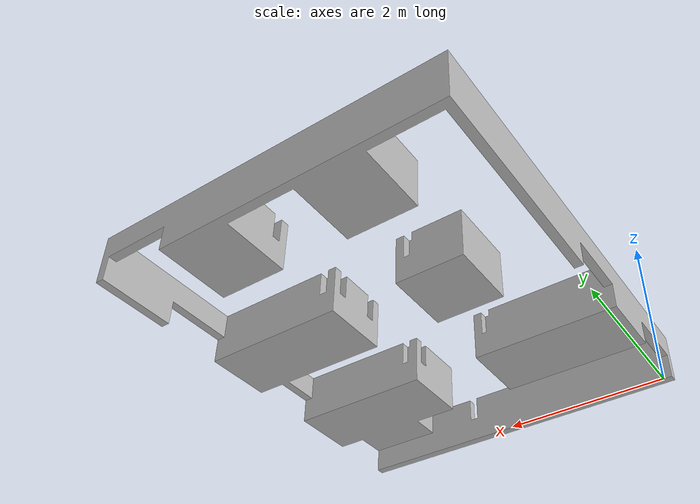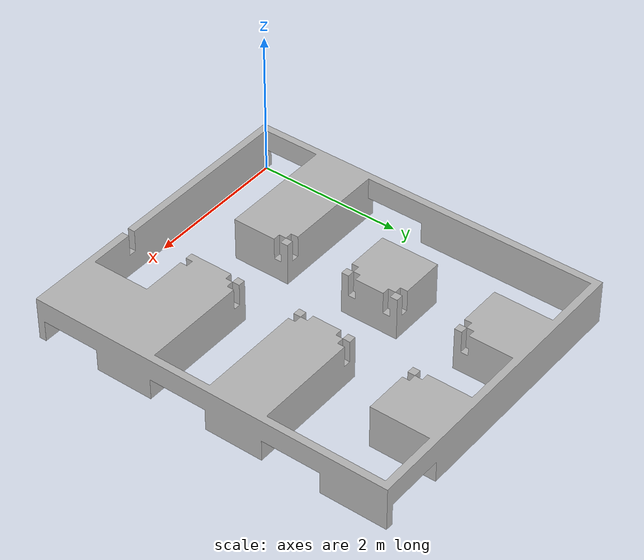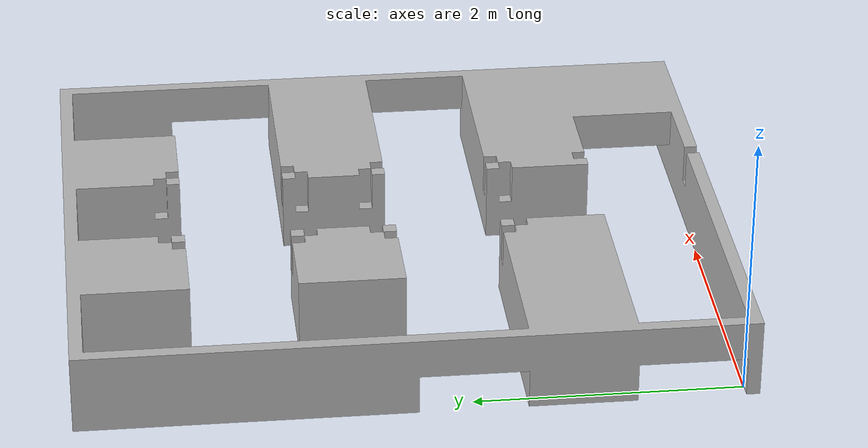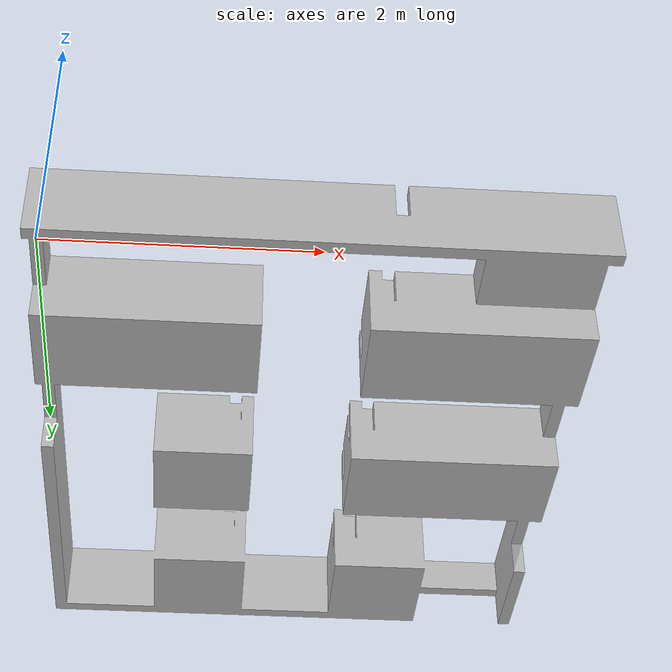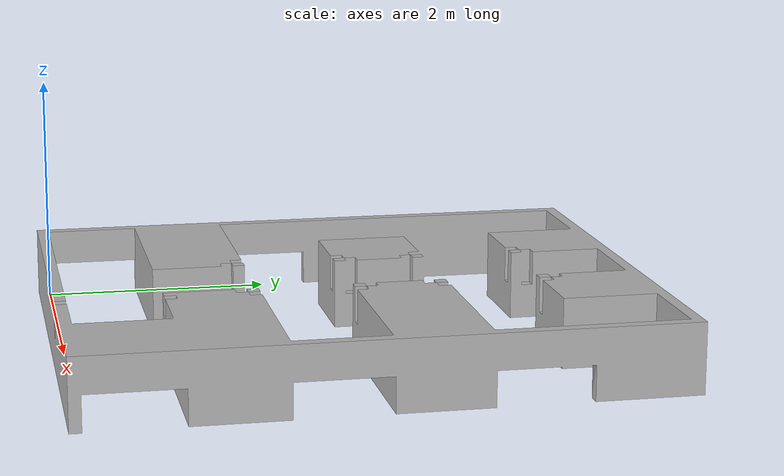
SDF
<?xml version="1.0" ?>
<sdf version="1.6">
  <model name="my_map">
    <static>true</static>
    <link name="link">
      <visual name="visual">
        <geometry>
          <mesh>
            <uri>model://my_map/meshes/map.dae</uri>
            <scale>0.001 0.001 0.001</scale>
          </mesh>
        </geometry>
      </visual>

      <collision name="collision">
        <geometry>
          <mesh>
            <uri>model://my_map/meshes/map.dae</uri>
            <scale>0.001 0.001 0.001</scale>
          </mesh>
        </geometry>
      </collision>
    </link>
  </model>
</sdf>
